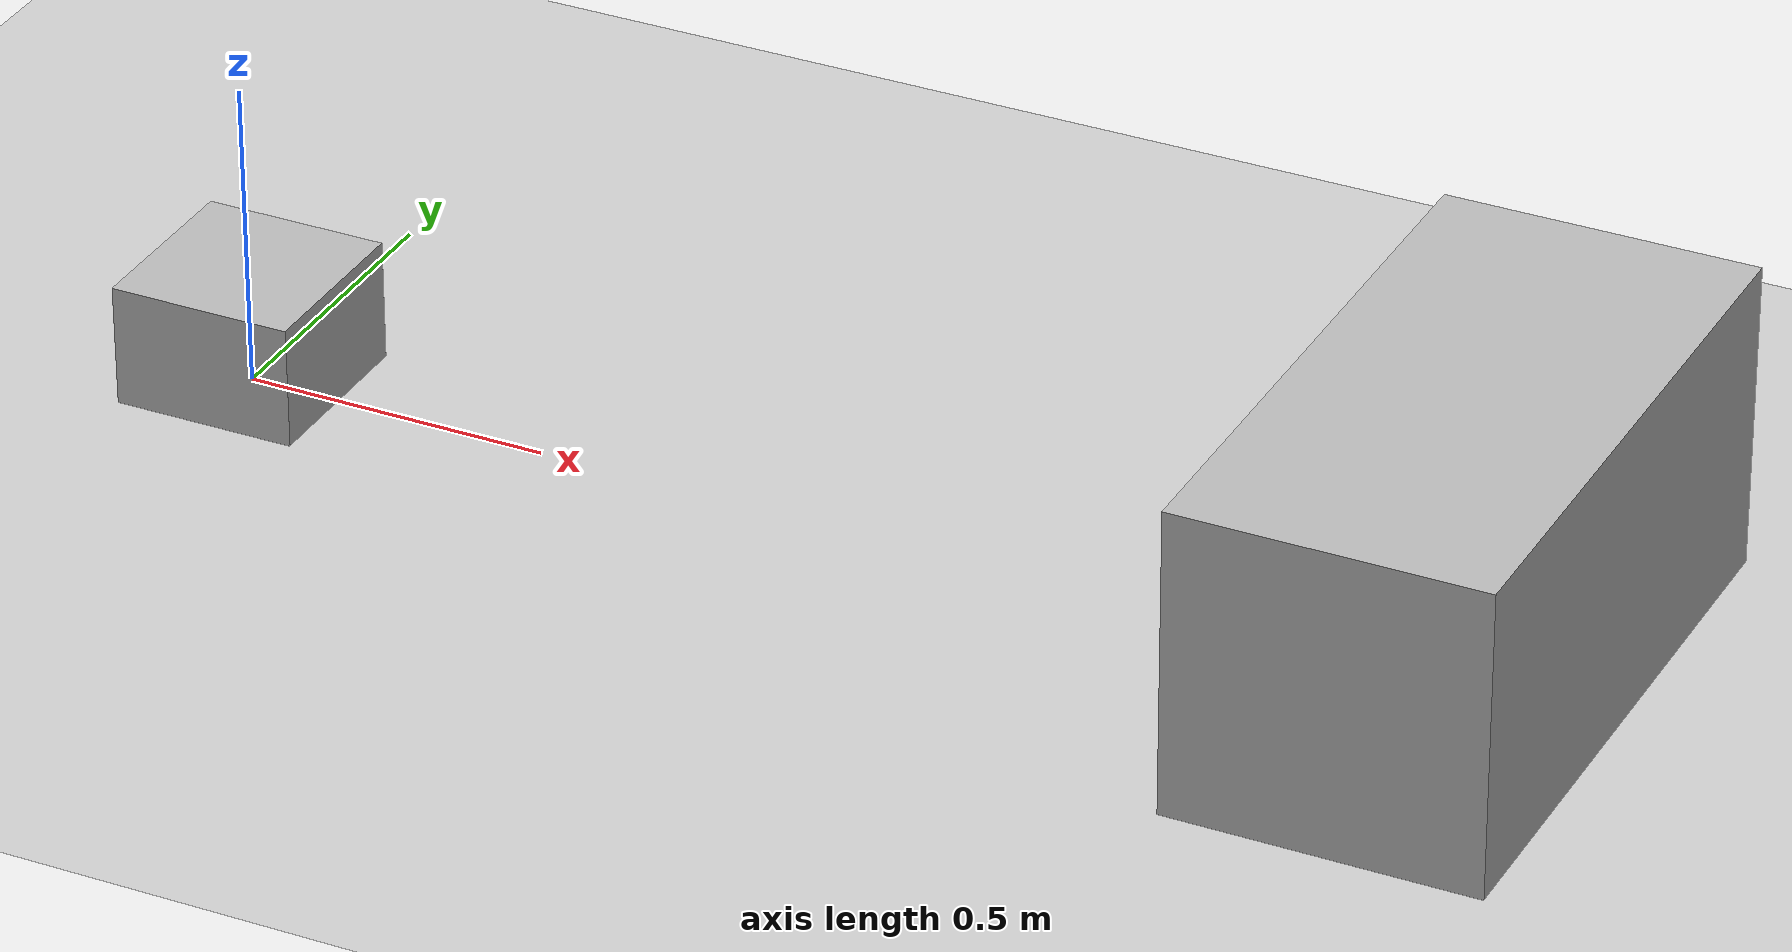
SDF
<?xml version="1.0" ?>
<sdf version="1.9">
  <world name="spike">
    <physics name="1ms" type="ignored">
      <max_step_size>0.001</max_step_size>
      <real_time_factor>1.0</real_time_factor>
    </physics>
    <plugin filename="gz-sim-physics-system" name="gz::sim::systems::Physics"/>
    <plugin filename="gz-sim-sensors-system" name="gz::sim::systems::Sensors">
      <render_engine>ogre2</render_engine>
    </plugin>
    <plugin filename="gz-sim-scene-broadcaster-system" name="gz::sim::systems::SceneBroadcaster"/>

    <light type="directional" name="sun">
      <cast_shadows>false</cast_shadows>
      <direction>-0.5 0.1 -0.9</direction>
      <diffuse>1 1 1 1</diffuse>
      <specular>0.2 0.2 0.2 1</specular>
    </light>

    <model name="ground">
      <static>true</static>
      <link name="link">
        <collision name="c"><geometry><plane><normal>0 0 1</normal><size>20 20</size></plane></geometry></collision>
        <visual name="v"><geometry><plane><normal>0 0 1</normal><size>20 20</size></plane></geometry></visual>
      </link>
    </model>

    <model name="box">
      <static>true</static>
      <pose>2 0 0.25 0 0 0</pose>
      <link name="link">
        <collision name="c"><geometry><box><size>0.5 1.0 0.5</size></box></geometry></collision>
        <visual name="v"><geometry><box><size>0.5 1.0 0.5</size></box></geometry></visual>
      </link>
    </model>

    <model name="robot">
      <pose>0 0 0.1 0 0 0</pose>
      <link name="base">
        <inertial><mass>5</mass><inertia><ixx>0.1</ixx><ixy>0</ixy><ixz>0</ixz><iyy>0.1</iyy><iyz>0</iyz><izz>0.1</izz></inertia></inertial>
        <collision name="c"><geometry><box><size>0.3 0.3 0.2</size></box></geometry></collision>
        <visual name="v"><geometry><box><size>0.3 0.3 0.2</size></box></geometry></visual>
        <sensor name="lidar" type="gpu_lidar">
          <pose>0.15 0 0.1 0 0 0</pose>
          <topic>scan</topic>
          <update_rate>10</update_rate>
          <always_on>true</always_on>
          <visualize>false</visualize>
          <lidar>
            <scan><horizontal><samples>180</samples><resolution>1</resolution>
              <min_angle>-1.5708</min_angle><max_angle>1.5708</max_angle></horizontal></scan>
            <range><min>0.08</min><max>10.0</max><resolution>0.01</resolution></range>
          </lidar>
        </sensor>
      </link>
    </model>
  </world>
</sdf>
